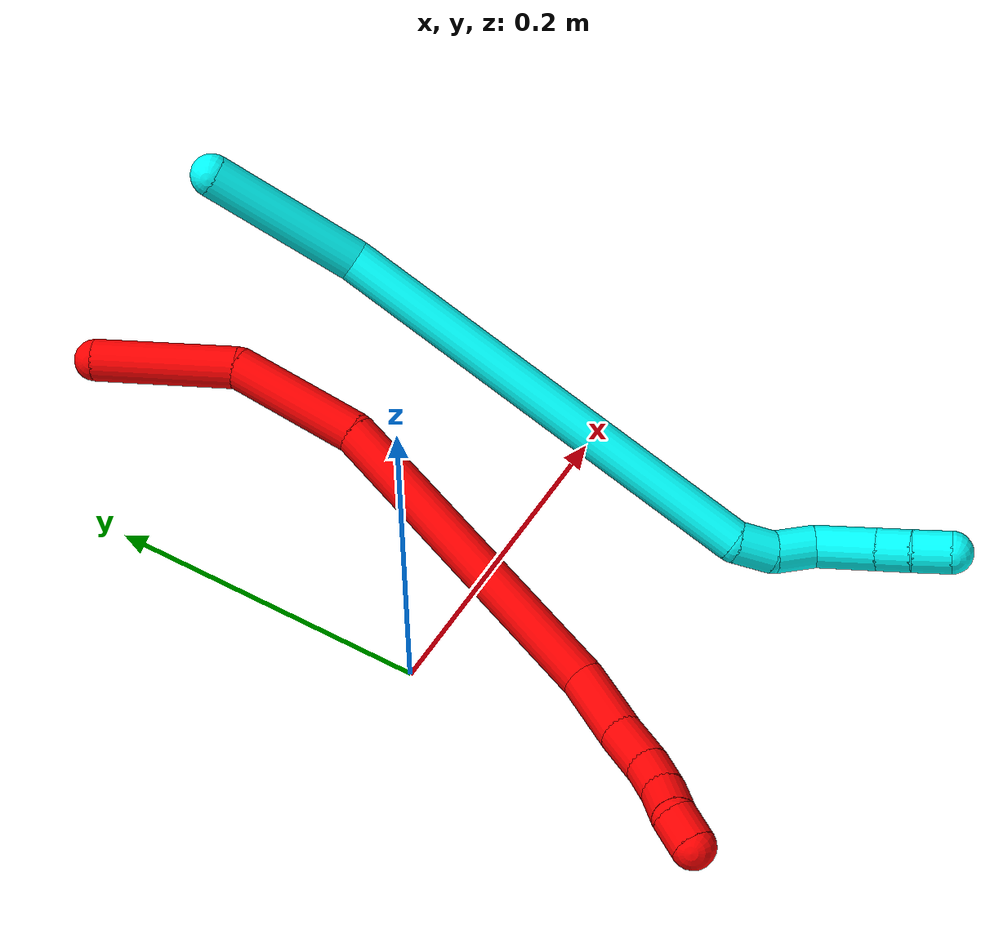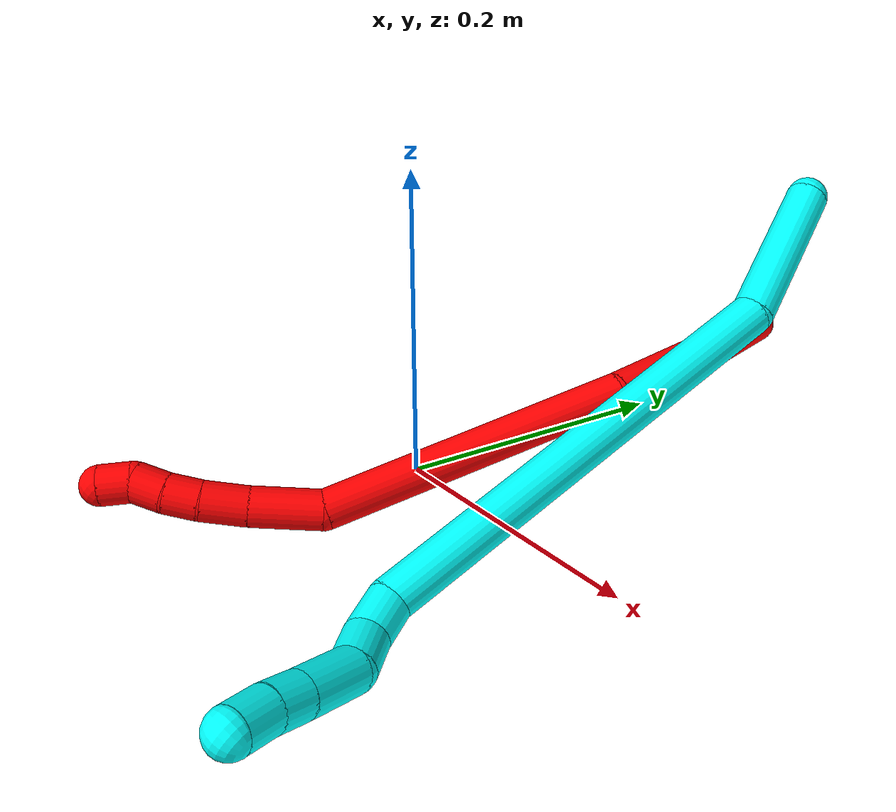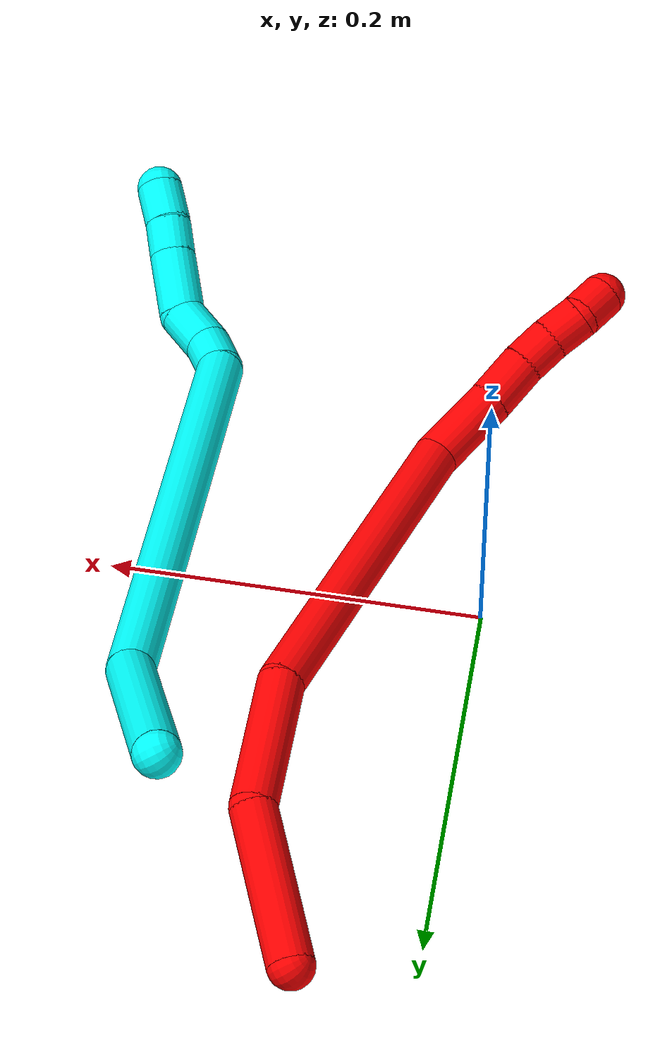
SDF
<sdf version="1.7">
 <world name="default">
  <model name="photoneo_s_sensor">
   <static>1</static>
   <pose>0 0 2 1.57079 1.57079 3.14159</pose>
   <link name="link">
    <inertial><mass>0.1</mass></inertial>
    <sensor name="sensor" type="depth">
     <update_rate>30</update_rate>
     <camera>
      <horizontal_fov>1.22</horizontal_fov>
      <image><width>1920</width><height>1200</height><format>B8G8R8</format></image>
      <clip><near>0.1</near><far>4</far></clip>
      <depth_camera><output>points</output></depth_camera>
     </camera>
     <plugin name="camera_plugin" filename="libgazebo_ros_depth_camera.so">
      <baseline>0.2</baseline>
      <alwaysOn>1</alwaysOn>
      <updateRate>0.0</updateRate>
      <cameraName>camera_ir</cameraName>
      <imageTopicName>/camera/color/image_raw</imageTopicName>
      <cameraInfoTopicName>/camera/color/camera_info</cameraInfoTopicName>
      <depthImageTopicName>/camera/depth/image_raw</depthImageTopicName>
      <depthImageCameraInfoTopicName>/camera/depth/camera_info</depthImageCameraInfoTopicName>
      <pointCloudTopicName>/camera/depth/points</pointCloudTopicName>
      <frameName>fr_optical</frameName>
      <pointCloudCutoff>0.1</pointCloudCutoff>
      <pointCloudCutoffMax>2.0</pointCloudCutoffMax>
      <distortionK1>0</distortionK1>
      <distortionK2>0</distortionK2>
      <distortionK3>0</distortionK3>
      <distortionT1>0</distortionT1>
      <distortionT2>0</distortionT2>
      <CxPrime>0</CxPrime>
      <Cx>0</Cx>
      <Cy>0</Cy>
      <focalLength>0</focalLength>
      <hackBaseline>0</hackBaseline>
     </plugin>
    </sensor>
   </link>
  </model>
  <model name="bin">
   <static>1</static>
   <link name="bottom">
    <collision name="collision-bottom">
     <pose>0 0 -0.01 0 -0 0</pose>
     <geometry><box><size>0.8 0.6 0.02</size></box></geometry>
     <surface>
      <friction><ode><mu>100</mu><mu2>100</mu2></ode></friction>
      <contact><collide_bitmask>65535</collide_bitmask></contact>
     </surface>
    </collision>
   </link>
   <link name="west_wall">
    <collision name="collision-west_wall">
     <pose>-0.41 0 0.1 0 -0 0</pose>
     <geometry><box><size>0.02 0.6 0.2</size></box></geometry>
     <surface>
      <friction><ode><mu>100</mu><mu2>100</mu2></ode></friction>
      <contact><collide_bitmask>65535</collide_bitmask></contact>
     </surface>
    </collision>
   </link>
   <link name="east_wall">
    <collision name="collision-east_wall">
     <pose>0.41 0 0.1 0 -0 0</pose>
     <geometry><box><size>0.02 0.6 0.2</size></box></geometry>
     <surface>
      <friction><ode><mu>100</mu><mu2>100</mu2></ode></friction>
      <contact><collide_bitmask>65535</collide_bitmask></contact>
     </surface>
    </collision>
   </link>
   <link name="south_wall">
    <collision name="collision-south_wall">
     <pose>0 -0.31 0.1 0 -0 0</pose>
     <geometry><box><size>0.8 0.02 0.2</size></box></geometry>
     <surface>
      <friction><ode><mu>100</mu><mu2>100</mu2></ode></friction>
      <contact><collide_bitmask>65535</collide_bitmask></contact>
     </surface>
    </collision>
   </link>
   <link name="north_wall">
    <collision name="collision-north_wall">
     <pose>0 0.31 0.1 0 -0 0</pose>
     <geometry><box><size>0.8 0.02 0.2</size></box></geometry>
     <surface>
      <friction><ode><mu>100</mu><mu2>100</mu2></ode></friction>
      <contact><collide_bitmask>65535</collide_bitmask></contact>
     </surface>
    </collision>
   </link>
  </model>
  <model name="2">
   <static>0</static>
   <link name="2">
    <collision name="collision-cylinder-e_1_1_4">
     <pose>-0.034542 -0.026844 1e-06 1.57075 -0.910153 -0.910114</pose>
     <geometry><cylinder><radius>0.0125</radius><length>0.087492</length></cylinder></geometry>
     <surface>
      <friction><ode><mu>1.16</mu><mu2>1.16</mu2><slip1>0</slip1><slip2>0</slip2></ode></friction>
      <contact><ode><kp>1e+06</kp><kd>1</kd><max_vel>0</max_vel><min_depth>0.001</min_depth></ode></contact>
     </surface>
    </collision>
    <visual name="visual-cylinder-e_1_1_4">
     <pose>-0.034542 -0.026844 1e-06 1.57075 -0.910153 -0.910114</pose>
     <geometry><cylinder><radius>0.0125</radius><length>0.087492</length></cylinder></geometry>
     <material><ambient>1 0 0 1</ambient></material>
    </visual>
    <collision name="collision-cylinder-e_2_4_5">
     <pose>-0.088013 -0.089125 -0.006557 1.75382 -0.483638 -0.576465</pose>
     <geometry><cylinder><radius>0.0125</radius><length>0.081418</length></cylinder></geometry>
     <surface>
      <friction><ode><mu>1.16</mu><mu2>1.16</mu2><slip1>0</slip1><slip2>0</slip2></ode></friction>
      <contact><ode><kp>1e+06</kp><kd>1</kd><max_vel>0</max_vel><min_depth>0.001</min_depth></ode></contact>
     </surface>
    </collision>
    <visual name="visual-cylinder-e_2_4_5">
     <pose>-0.088013 -0.089125 -0.006557 1.75382 -0.483638 -0.576465</pose>
     <geometry><cylinder><radius>0.0125</radius><length>0.081418</length></cylinder></geometry>
     <material><ambient>1 0 0 1</ambient></material>
    </visual>
    <collision name="collision-cylinder-e_3_5_6">
     <pose>-0.126723 -0.217084 -0.040199 1.85556 -0.202374 -0.269388</pose>
     <geometry><cylinder><radius>0.0125</radius><length>0.196824</length></cylinder></geometry>
     <surface>
      <friction><ode><mu>1.16</mu><mu2>1.16</mu2><slip1>0</slip1><slip2>0</slip2></ode></friction>
      <contact><ode><kp>1e+06</kp><kd>1</kd><max_vel>0</max_vel><min_depth>0.001</min_depth></ode></contact>
     </surface>
    </collision>
    <visual name="visual-cylinder-e_3_5_6">
     <pose>-0.126723 -0.217084 -0.040199 1.85556 -0.202374 -0.269388</pose>
     <geometry><cylinder><radius>0.0125</radius><length>0.196824</length></cylinder></geometry>
     <material><ambient>1 0 0 1</ambient></material>
    </visual>
    <collision name="collision-cylinder-e_4_6_7">
     <pose>-0.150235 -0.325929 -0.082011 2.3049 -0.168106 -0.374566</pose>
     <geometry><cylinder><radius>0.0125</radius><length>0.044602</length></cylinder></geometry>
     <surface>
      <friction><ode><mu>1.16</mu><mu2>1.16</mu2><slip1>0</slip1><slip2>0</slip2></ode></friction>
      <contact><ode><kp>1e+06</kp><kd>1</kd><max_vel>0</max_vel><min_depth>0.001</min_depth></ode></contact>
     </surface>
    </collision>
    <visual name="visual-cylinder-e_4_6_7">
     <pose>-0.150235 -0.325929 -0.082011 2.3049 -0.168106 -0.374566</pose>
     <geometry><cylinder><radius>0.0125</radius><length>0.044602</length></cylinder></geometry>
     <material><ambient>1 0 0 1</ambient></material>
    </visual>
    <collision name="collision-cylinder-e_5_7_8">
     <pose>-0.157329 -0.351873 -0.106668 2.3719 -0.238616 -0.575495</pose>
     <geometry><cylinder><radius>0.0125</radius><length>0.028455</length></cylinder></geometry>
     <surface>
      <friction><ode><mu>1.16</mu><mu2>1.16</mu2><slip1>0</slip1><slip2>0</slip2></ode></friction>
      <contact><ode><kp>1e+06</kp><kd>1</kd><max_vel>0</max_vel><min_depth>0.001</min_depth></ode></contact>
     </surface>
    </collision>
    <visual name="visual-cylinder-e_5_7_8">
     <pose>-0.157329 -0.351873 -0.106668 2.3719 -0.238616 -0.575495</pose>
     <geometry><cylinder><radius>0.0125</radius><length>0.028455</length></cylinder></geometry>
     <material><ambient>1 0 0 1</ambient></material>
    </visual>
    <collision name="collision-cylinder-e_6_8_9">
     <pose>-0.162292 -0.367848 -0.124683 2.47566 -0.154381 -0.440041</pose>
     <geometry><cylinder><radius>0.0125</radius><length>0.020817</length></cylinder></geometry>
     <surface>
      <friction><ode><mu>1.16</mu><mu2>1.16</mu2><slip1>0</slip1><slip2>0</slip2></ode></friction>
      <contact><ode><kp>1e+06</kp><kd>1</kd><max_vel>0</max_vel><min_depth>0.001</min_depth></ode></contact>
     </surface>
    </collision>
    <visual name="visual-cylinder-e_6_8_9">
     <pose>-0.162292 -0.367848 -0.124683 2.47566 -0.154381 -0.440041</pose>
     <geometry><cylinder><radius>0.0125</radius><length>0.020817</length></cylinder></geometry>
     <material><ambient>1 0 0 1</ambient></material>
    </visual>
    <collision name="collision-cylinder-e_7_9_10">
     <pose>-0.16468 -0.379373 -0.141469 2.60524 -0.077609 -0.280708</pose>
     <geometry><cylinder><radius>0.0125</radius><length>0.020301</length></cylinder></geometry>
     <surface>
      <friction><ode><mu>1.16</mu><mu2>1.16</mu2><slip1>0</slip1><slip2>0</slip2></ode></friction>
      <contact><ode><kp>1e+06</kp><kd>1</kd><max_vel>0</max_vel><min_depth>0.001</min_depth></ode></contact>
     </surface>
    </collision>
    <visual name="visual-cylinder-e_7_9_10">
     <pose>-0.16468 -0.379373 -0.141469 2.60524 -0.077609 -0.280708</pose>
     <geometry><cylinder><radius>0.0125</radius><length>0.020301</length></cylinder></geometry>
     <material><ambient>1 0 0 1</ambient></material>
    </visual>
    <collision name="collision-cylinder-e_8_10_2">
     <pose>-0.166394 -0.392875 -0.155705 2.15738 -0.092477 -0.172197</pose>
     <geometry><cylinder><radius>0.0125</radius><length>0.020091</length></cylinder></geometry>
     <surface>
      <friction><ode><mu>1.16</mu><mu2>1.16</mu2><slip1>0</slip1><slip2>0</slip2></ode></friction>
      <contact><ode><kp>1e+06</kp><kd>1</kd><max_vel>0</max_vel><min_depth>0.001</min_depth></ode></contact>
     </surface>
    </collision>
    <visual name="visual-cylinder-e_8_10_2">
     <pose>-0.166394 -0.392875 -0.155705 2.15738 -0.092477 -0.172197</pose>
     <geometry><cylinder><radius>0.0125</radius><length>0.020091</length></cylinder></geometry>
     <material><ambient>1 0 0 1</ambient></material>
    </visual>
    <collision name="collision-sphere-2">
     <pose>-0.167322 -0.401206 -0.161241 0 -0 0</pose>
     <geometry><sphere><radius>0.0125</radius></sphere></geometry>
     <surface>
      <friction><ode><mu>1.16</mu><mu2>1.16</mu2><slip1>0</slip1><slip2>0</slip2></ode></friction>
      <contact><ode><kp>1e+06</kp><kd>1</kd><max_vel>0</max_vel><min_depth>0.001</min_depth></ode></contact>
     </surface>
    </collision>
    <visual name="visual-sphere-2">
     <pose>-0.167322 -0.401206 -0.161241 0 -0 0</pose>
     <geometry><sphere><radius>0.0125</radius></sphere></geometry>
     <material><ambient>1 0 0 1</ambient></material>
    </visual>
    <collision name="collision-sphere-10">
     <pose>-0.165467 -0.384544 -0.150168 0 -0 0</pose>
     <geometry><sphere><radius>0.0125</radius></sphere></geometry>
     <surface>
      <friction><ode><mu>1.16</mu><mu2>1.16</mu2><slip1>0</slip1><slip2>0</slip2></ode></friction>
      <contact><ode><kp>1e+06</kp><kd>1</kd><max_vel>0</max_vel><min_depth>0.001</min_depth></ode></contact>
     </surface>
    </collision>
    <visual name="visual-sphere-10">
     <pose>-0.165467 -0.384544 -0.150168 0 -0 0</pose>
     <geometry><sphere><radius>0.0125</radius></sphere></geometry>
     <material><ambient>1 0 0 1</ambient></material>
    </visual>
    <collision name="collision-sphere-9">
     <pose>-0.163893 -0.374202 -0.13277 0 -0 0</pose>
     <geometry><sphere><radius>0.0125</radius></sphere></geometry>
     <surface>
      <friction><ode><mu>1.16</mu><mu2>1.16</mu2><slip1>0</slip1><slip2>0</slip2></ode></friction>
      <contact><ode><kp>1e+06</kp><kd>1</kd><max_vel>0</max_vel><min_depth>0.001</min_depth></ode></contact>
     </surface>
    </collision>
    <visual name="visual-sphere-9">
     <pose>-0.163893 -0.374202 -0.13277 0 -0 0</pose>
     <geometry><sphere><radius>0.0125</radius></sphere></geometry>
     <material><ambient>1 0 0 1</ambient></material>
    </visual>
    <collision name="collision-sphere-4">
     <pose>-0.069083 -0.053687 3e-06 0 -0 0</pose>
     <geometry><sphere><radius>0.0125</radius></sphere></geometry>
     <surface>
      <friction><ode><mu>1.16</mu><mu2>1.16</mu2><slip1>0</slip1><slip2>0</slip2></ode></friction>
      <contact><ode><kp>1e+06</kp><kd>1</kd><max_vel>0</max_vel><min_depth>0.001</min_depth></ode></contact>
     </surface>
    </collision>
    <visual name="visual-sphere-4">
     <pose>-0.069083 -0.053687 3e-06 0 -0 0</pose>
     <geometry><sphere><radius>0.0125</radius></sphere></geometry>
     <material><ambient>1 0 0 1</ambient></material>
    </visual>
    <collision name="collision-sphere-1">
     <geometry><sphere><radius>0.0125</radius></sphere></geometry>
     <surface>
      <friction><ode><mu>1.16</mu><mu2>1.16</mu2><slip1>0</slip1><slip2>0</slip2></ode></friction>
      <contact><ode><kp>1e+06</kp><kd>1</kd><max_vel>0</max_vel><min_depth>0.001</min_depth></ode></contact>
     </surface>
    </collision>
    <visual name="visual-sphere-1">
     <geometry><sphere><radius>0.0125</radius></sphere></geometry>
     <material><ambient>1 0 0 1</ambient></material>
    </visual>
    <collision name="collision-sphere-8">
     <pose>-0.160692 -0.361494 -0.116596 0 -0 0</pose>
     <geometry><sphere><radius>0.0125</radius></sphere></geometry>
     <surface>
      <friction><ode><mu>1.16</mu><mu2>1.16</mu2><slip1>0</slip1><slip2>0</slip2></ode></friction>
      <contact><ode><kp>1e+06</kp><kd>1</kd><max_vel>0</max_vel><min_depth>0.001</min_depth></ode></contact>
     </surface>
    </collision>
    <visual name="visual-sphere-8">
     <pose>-0.160692 -0.361494 -0.116596 0 -0 0</pose>
     <geometry><sphere><radius>0.0125</radius></sphere></geometry>
     <material><ambient>1 0 0 1</ambient></material>
    </visual>
    <collision name="collision-sphere-5">
     <pose>-0.106943 -0.124563 -0.013117 0 -0 0</pose>
     <geometry><sphere><radius>0.0125</radius></sphere></geometry>
     <surface>
      <friction><ode><mu>1.16</mu><mu2>1.16</mu2><slip1>0</slip1><slip2>0</slip2></ode></friction>
      <contact><ode><kp>1e+06</kp><kd>1</kd><max_vel>0</max_vel><min_depth>0.001</min_depth></ode></contact>
     </surface>
    </collision>
    <visual name="visual-sphere-5">
     <pose>-0.106943 -0.124563 -0.013117 0 -0 0</pose>
     <geometry><sphere><radius>0.0125</radius></sphere></geometry>
     <material><ambient>1 0 0 1</ambient></material>
    </visual>
    <collision name="collision-sphere-6">
     <pose>-0.146503 -0.309606 -0.067281 0 -0 0</pose>
     <geometry><sphere><radius>0.0125</radius></sphere></geometry>
     <surface>
      <friction><ode><mu>1.16</mu><mu2>1.16</mu2><slip1>0</slip1><slip2>0</slip2></ode></friction>
      <contact><ode><kp>1e+06</kp><kd>1</kd><max_vel>0</max_vel><min_depth>0.001</min_depth></ode></contact>
     </surface>
    </collision>
    <visual name="visual-sphere-6">
     <pose>-0.146503 -0.309606 -0.067281 0 -0 0</pose>
     <geometry><sphere><radius>0.0125</radius></sphere></geometry>
     <material><ambient>1 0 0 1</ambient></material>
    </visual>
    <collision name="collision-sphere-7">
     <pose>-0.153966 -0.342253 -0.09674 0 -0 0</pose>
     <geometry><sphere><radius>0.0125</radius></sphere></geometry>
     <surface>
      <friction><ode><mu>1.16</mu><mu2>1.16</mu2><slip1>0</slip1><slip2>0</slip2></ode></friction>
      <contact><ode><kp>1e+06</kp><kd>1</kd><max_vel>0</max_vel><min_depth>0.001</min_depth></ode></contact>
     </surface>
    </collision>
    <visual name="visual-sphere-7">
     <pose>-0.153966 -0.342253 -0.09674 0 -0 0</pose>
     <geometry><sphere><radius>0.0125</radius></sphere></geometry>
     <material><ambient>1 0 0 1</ambient></material>
    </visual>
    <inertial>
     <pose>-0.112745 -0.200269 -0.04747 0 -0 0</pose>
     <mass>0.5</mass>
     <inertia>
      <ixx>0.000442</ixx>
      <ixy>0</ixy>
      <ixz>0</ixz>
      <iyy>-0.000367</iyy>
      <iyz>0</iyz>
      <izz>0.000883</izz>
     </inertia>
    </inertial>
   </link>
   <pose>0.058073 0.254171 0.068814 2.39393 0.571147 2.42746</pose>
  </model>
  <model name="3">
   <static>0</static>
   <link name="3">
    <collision name="collision-cylinder-e_1_1_4">
     <pose>0.033903 -0.032046 0.011783 1.21844 0.781851 0.560034</pose>
     <geometry><cylinder><radius>0.0125</radius><length>0.096233</length></cylinder></geometry>
     <surface>
      <friction><ode><mu>1.16</mu><mu2>1.16</mu2><slip1>0</slip1><slip2>0</slip2></ode></friction>
      <contact><ode><kp>1e+06</kp><kd>1</kd><max_vel>0</max_vel><min_depth>0.001</min_depth></ode></contact>
     </surface>
    </collision>
    <visual name="visual-cylinder-e_1_1_4">
     <pose>0.033903 -0.032046 0.011783 1.21844 0.781851 0.560034</pose>
     <geometry><cylinder><radius>0.0125</radius><length>0.096233</length></cylinder></geometry>
     <material><ambient>0.003922 1 0.996078 1</ambient></material>
    </visual>
    <collision name="collision-cylinder-e_2_4_5">
     <pose>0.164852 -0.159319 0.005103 1.76232 0.785638 0.931153</pose>
     <geometry><cylinder><radius>0.0125</radius><length>0.274423</length></cylinder></geometry>
     <surface>
      <friction><ode><mu>1.16</mu><mu2>1.16</mu2><slip1>0</slip1><slip2>0</slip2></ode></friction>
      <contact><ode><kp>1e+06</kp><kd>1</kd><max_vel>0</max_vel><min_depth>0.001</min_depth></ode></contact>
     </surface>
    </collision>
    <visual name="visual-cylinder-e_2_4_5">
     <pose>0.164852 -0.159319 0.005103 1.76232 0.785638 0.931153</pose>
     <geometry><cylinder><radius>0.0125</radius><length>0.274423</length></cylinder></geometry>
     <material><ambient>0.003922 1 0.996078 1</ambient></material>
    </visual>
    <collision name="collision-cylinder-e_3_5_6">
     <pose>0.267982 -0.264709 -0.010678 1.31261 0.524642 0.407862</pose>
     <geometry><cylinder><radius>0.0125</radius><length>0.02429</length></cylinder></geometry>
     <surface>
      <friction><ode><mu>1.16</mu><mu2>1.16</mu2><slip1>0</slip1><slip2>0</slip2></ode></friction>
      <contact><ode><kp>1e+06</kp><kd>1</kd><max_vel>0</max_vel><min_depth>0.001</min_depth></ode></contact>
     </surface>
    </collision>
    <visual name="visual-cylinder-e_3_5_6">
     <pose>0.267982 -0.264709 -0.010678 1.31261 0.524642 0.407862</pose>
     <geometry><cylinder><radius>0.0125</radius><length>0.02429</length></cylinder></geometry>
     <material><ambient>0.003922 1 0.996078 1</ambient></material>
    </visual>
    <collision name="collision-cylinder-e_4_6_7">
     <pose>0.275786 -0.286826 -0.003725 1.22779 0.134731 0.095022</pose>
     <geometry><cylinder><radius>0.0125</radius><length>0.02562</length></cylinder></geometry>
     <surface>
      <friction><ode><mu>1.16</mu><mu2>1.16</mu2><slip1>0</slip1><slip2>0</slip2></ode></friction>
      <contact><ode><kp>1e+06</kp><kd>1</kd><max_vel>0</max_vel><min_depth>0.001</min_depth></ode></contact>
     </surface>
    </collision>
    <visual name="visual-cylinder-e_4_6_7">
     <pose>0.275786 -0.286826 -0.003725 1.22779 0.134731 0.095022</pose>
     <geometry><cylinder><radius>0.0125</radius><length>0.02562</length></cylinder></geometry>
     <material><ambient>0.003922 1 0.996078 1</ambient></material>
    </visual>
    <collision name="collision-cylinder-e_5_7_8">
     <pose>0.280242 -0.316523 -0.002294 1.72946 0.151092 0.177064</pose>
     <geometry><cylinder><radius>0.0125</radius><length>0.036349</length></cylinder></geometry>
     <surface>
      <friction><ode><mu>1.16</mu><mu2>1.16</mu2><slip1>0</slip1><slip2>0</slip2></ode></friction>
      <contact><ode><kp>1e+06</kp><kd>1</kd><max_vel>0</max_vel><min_depth>0.001</min_depth></ode></contact>
     </surface>
    </collision>
    <visual name="visual-cylinder-e_5_7_8">
     <pose>0.280242 -0.316523 -0.002294 1.72946 0.151092 0.177064</pose>
     <geometry><cylinder><radius>0.0125</radius><length>0.036349</length></cylinder></geometry>
     <material><ambient>0.003922 1 0.996078 1</ambient></material>
    </visual>
    <collision name="collision-cylinder-e_6_8_9">
     <pose>0.284364 -0.344058 -0.006987 1.75785 0.138187 0.166673</pose>
     <geometry><cylinder><radius>0.0125</radius><length>0.020128</length></cylinder></geometry>
     <surface>
      <friction><ode><mu>1.16</mu><mu2>1.16</mu2><slip1>0</slip1><slip2>0</slip2></ode></friction>
      <contact><ode><kp>1e+06</kp><kd>1</kd><max_vel>0</max_vel><min_depth>0.001</min_depth></ode></contact>
     </surface>
    </collision>
    <visual name="visual-cylinder-e_6_8_9">
     <pose>0.284364 -0.344058 -0.006987 1.75785 0.138187 0.166673</pose>
     <geometry><cylinder><radius>0.0125</radius><length>0.020128</length></cylinder></geometry>
     <material><ambient>0.003922 1 0.996078 1</ambient></material>
    </visual>
    <collision name="collision-cylinder-e_7_9_2">
     <pose>0.287671 -0.365129 -0.009786 1.65449 0.168089 0.182701</pose>
     <geometry><cylinder><radius>0.0125</radius><length>0.022957</length></cylinder></geometry>
     <surface>
      <friction><ode><mu>1.16</mu><mu2>1.16</mu2><slip1>0</slip1><slip2>0</slip2></ode></friction>
      <contact><ode><kp>1e+06</kp><kd>1</kd><max_vel>0</max_vel><min_depth>0.001</min_depth></ode></contact>
     </surface>
    </collision>
    <visual name="visual-cylinder-e_7_9_2">
     <pose>0.287671 -0.365129 -0.009786 1.65449 0.168089 0.182701</pose>
     <geometry><cylinder><radius>0.0125</radius><length>0.022957</length></cylinder></geometry>
     <material><ambient>0.003922 1 0.996078 1</ambient></material>
    </visual>
    <collision name="collision-sphere-2">
     <pose>0.289591 -0.376406 -0.010732 0 -0 0</pose>
     <geometry><sphere><radius>0.0125</radius></sphere></geometry>
     <surface>
      <friction><ode><mu>1.16</mu><mu2>1.16</mu2><slip1>0</slip1><slip2>0</slip2></ode></friction>
      <contact><ode><kp>1e+06</kp><kd>1</kd><max_vel>0</max_vel><min_depth>0.001</min_depth></ode></contact>
     </surface>
    </collision>
    <visual name="visual-sphere-2">
     <pose>0.289591 -0.376406 -0.010732 0 -0 0</pose>
     <geometry><sphere><radius>0.0125</radius></sphere></geometry>
     <material><ambient>0.003922 1 0.996078 1</ambient></material>
    </visual>
    <collision name="collision-sphere-9">
     <pose>0.28575 -0.353852 -0.00884 0 -0 0</pose>
     <geometry><sphere><radius>0.0125</radius></sphere></geometry>
     <surface>
      <friction><ode><mu>1.16</mu><mu2>1.16</mu2><slip1>0</slip1><slip2>0</slip2></ode></friction>
      <contact><ode><kp>1e+06</kp><kd>1</kd><max_vel>0</max_vel><min_depth>0.001</min_depth></ode></contact>
     </surface>
    </collision>
    <visual name="visual-sphere-9">
     <pose>0.28575 -0.353852 -0.00884 0 -0 0</pose>
     <geometry><sphere><radius>0.0125</radius></sphere></geometry>
     <material><ambient>0.003922 1 0.996078 1</ambient></material>
    </visual>
    <collision name="collision-sphere-4">
     <pose>0.067805 -0.064093 0.023567 0 -0 0</pose>
     <geometry><sphere><radius>0.0125</radius></sphere></geometry>
     <surface>
      <friction><ode><mu>1.16</mu><mu2>1.16</mu2><slip1>0</slip1><slip2>0</slip2></ode></friction>
      <contact><ode><kp>1e+06</kp><kd>1</kd><max_vel>0</max_vel><min_depth>0.001</min_depth></ode></contact>
     </surface>
    </collision>
    <visual name="visual-sphere-4">
     <pose>0.067805 -0.064093 0.023567 0 -0 0</pose>
     <geometry><sphere><radius>0.0125</radius></sphere></geometry>
     <material><ambient>0.003922 1 0.996078 1</ambient></material>
    </visual>
    <collision name="collision-sphere-1">
     <geometry><sphere><radius>0.0125</radius></sphere></geometry>
     <surface>
      <friction><ode><mu>1.16</mu><mu2>1.16</mu2><slip1>0</slip1><slip2>0</slip2></ode></friction>
      <contact><ode><kp>1e+06</kp><kd>1</kd><max_vel>0</max_vel><min_depth>0.001</min_depth></ode></contact>
     </surface>
    </collision>
    <visual name="visual-sphere-1">
     <geometry><sphere><radius>0.0125</radius></sphere></geometry>
     <material><ambient>0.003922 1 0.996078 1</ambient></material>
    </visual>
    <collision name="collision-sphere-8">
     <pose>0.282978 -0.334264 -0.005133 0 -0 0</pose>
     <geometry><sphere><radius>0.0125</radius></sphere></geometry>
     <surface>
      <friction><ode><mu>1.16</mu><mu2>1.16</mu2><slip1>0</slip1><slip2>0</slip2></ode></friction>
      <contact><ode><kp>1e+06</kp><kd>1</kd><max_vel>0</max_vel><min_depth>0.001</min_depth></ode></contact>
     </surface>
    </collision>
    <visual name="visual-sphere-8">
     <pose>0.282978 -0.334264 -0.005133 0 -0 0</pose>
     <geometry><sphere><radius>0.0125</radius></sphere></geometry>
     <material><ambient>0.003922 1 0.996078 1</ambient></material>
    </visual>
    <collision name="collision-sphere-5">
     <pose>0.261899 -0.254546 -0.013361 0 -0 0</pose>
     <geometry><sphere><radius>0.0125</radius></sphere></geometry>
     <surface>
      <friction><ode><mu>1.16</mu><mu2>1.16</mu2><slip1>0</slip1><slip2>0</slip2></ode></friction>
      <contact><ode><kp>1e+06</kp><kd>1</kd><max_vel>0</max_vel><min_depth>0.001</min_depth></ode></contact>
     </surface>
    </collision>
    <visual name="visual-sphere-5">
     <pose>0.261899 -0.254546 -0.013361 0 -0 0</pose>
     <geometry><sphere><radius>0.0125</radius></sphere></geometry>
     <material><ambient>0.003922 1 0.996078 1</ambient></material>
    </visual>
    <collision name="collision-sphere-6">
     <pose>0.274065 -0.274872 -0.007994 0 -0 0</pose>
     <geometry><sphere><radius>0.0125</radius></sphere></geometry>
     <surface>
      <friction><ode><mu>1.16</mu><mu2>1.16</mu2><slip1>0</slip1><slip2>0</slip2></ode></friction>
      <contact><ode><kp>1e+06</kp><kd>1</kd><max_vel>0</max_vel><min_depth>0.001</min_depth></ode></contact>
     </surface>
    </collision>
    <visual name="visual-sphere-6">
     <pose>0.274065 -0.274872 -0.007994 0 -0 0</pose>
     <geometry><sphere><radius>0.0125</radius></sphere></geometry>
     <material><ambient>0.003922 1 0.996078 1</ambient></material>
    </visual>
    <collision name="collision-sphere-7">
     <pose>0.277507 -0.298781 0.000545 0 -0 0</pose>
     <geometry><sphere><radius>0.0125</radius></sphere></geometry>
     <surface>
      <friction><ode><mu>1.16</mu><mu2>1.16</mu2><slip1>0</slip1><slip2>0</slip2></ode></friction>
      <contact><ode><kp>1e+06</kp><kd>1</kd><max_vel>0</max_vel><min_depth>0.001</min_depth></ode></contact>
     </surface>
    </collision>
    <visual name="visual-sphere-7">
     <pose>0.277507 -0.298781 0.000545 0 -0 0</pose>
     <geometry><sphere><radius>0.0125</radius></sphere></geometry>
     <material><ambient>0.003922 1 0.996078 1</ambient></material>
    </visual>
    <inertial>
     <pose>0.169182 -0.174791 0.003462 0 -0 0</pose>
     <mass>0.5</mass>
     <inertia>
      <ixx>0.001828</ixx>
      <ixy>0</ixy>
      <ixz>0</ixz>
      <iyy>0.001805</iyy>
      <iyz>0</iyz>
      <izz>-1.7e-05</izz>
     </inertia>
    </inertial>
   </link>
   <pose>0.130071 0.208169 0.179693 -2.70792 1.00577 -2.2257</pose>
  </model>
 </world>
</sdf>
